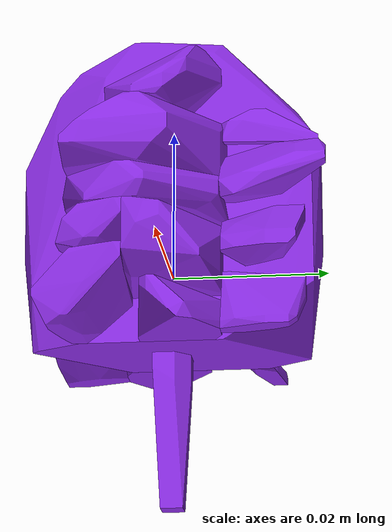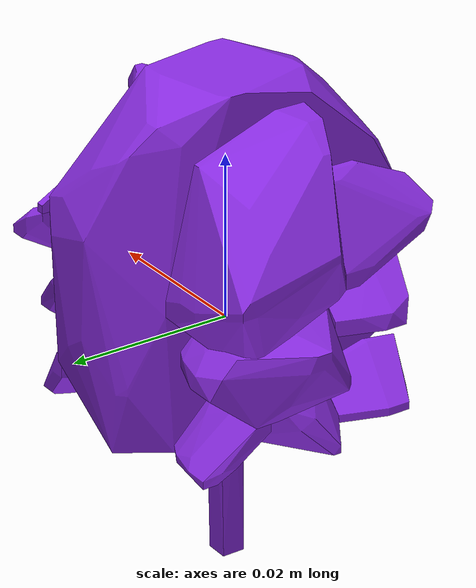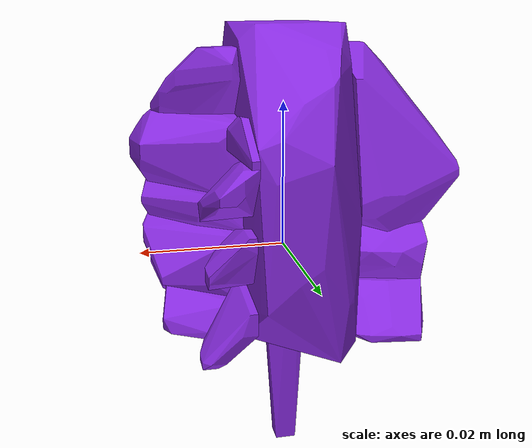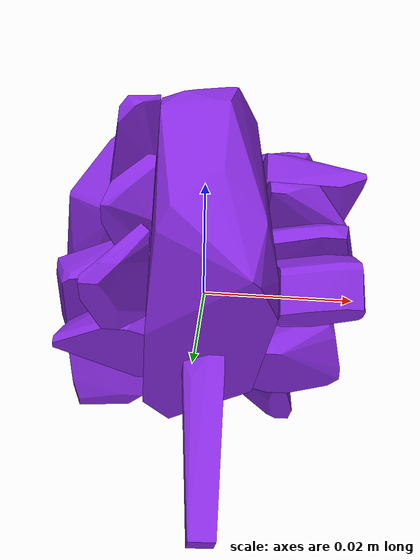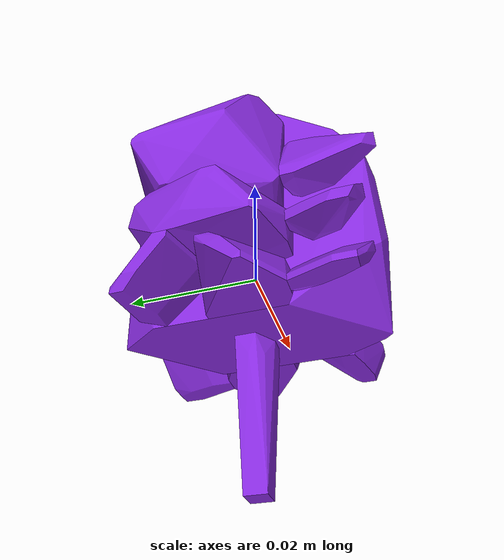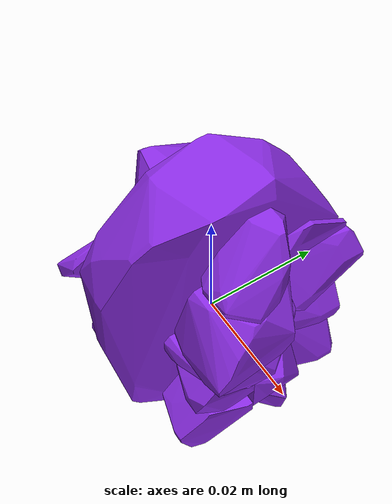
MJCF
<mujoco model="shapenetsem31">
  <asset>
    <mesh file="meshes/shapenetsem31/shapenetsem31_0.stl" name="shapenetsem31_0" scale="1 1 1"/>
    <mesh file="meshes/shapenetsem31/shapenetsem31_1.stl" name="shapenetsem31_1" scale="1 1 1"/>
    <mesh file="meshes/shapenetsem31/shapenetsem31_2.stl" name="shapenetsem31_2" scale="1 1 1"/>
    <mesh file="meshes/shapenetsem31/shapenetsem31_3.stl" name="shapenetsem31_3" scale="1 1 1"/>
    <mesh file="meshes/shapenetsem31/shapenetsem31_4.stl" name="shapenetsem31_4" scale="1 1 1"/>
    <mesh file="meshes/shapenetsem31/shapenetsem31_5.stl" name="shapenetsem31_5" scale="1 1 1"/>
    <mesh file="meshes/shapenetsem31/shapenetsem31_6.stl" name="shapenetsem31_6" scale="1 1 1"/>
    <mesh file="meshes/shapenetsem31/shapenetsem31_7.stl" name="shapenetsem31_7" scale="1 1 1"/>
    <mesh file="meshes/shapenetsem31/shapenetsem31_8.stl" name="shapenetsem31_8" scale="1 1 1"/>
    <mesh file="meshes/shapenetsem31/shapenetsem31_9.stl" name="shapenetsem31_9" scale="1 1 1"/>
    <mesh file="meshes/shapenetsem31/shapenetsem31_10.stl" name="shapenetsem31_10" scale="1 1 1"/>
    <mesh file="meshes/shapenetsem31/shapenetsem31_11.stl" name="shapenetsem31_11" scale="1 1 1"/>
    <mesh file="meshes/shapenetsem31/shapenetsem31_12.stl" name="shapenetsem31_12" scale="1 1 1"/>
    <mesh file="meshes/shapenetsem31/shapenetsem31_13.stl" name="shapenetsem31_13" scale="1 1 1"/>
    <mesh file="meshes/shapenetsem31/shapenetsem31_14.stl" name="shapenetsem31_14" scale="1 1 1"/>
    <mesh file="meshes/shapenetsem31/shapenetsem31_15.stl" name="shapenetsem31_15" scale="1 1 1"/>
    <mesh file="meshes/shapenetsem31/shapenetsem31_16.stl" name="shapenetsem31_16" scale="1 1 1"/>
    <mesh file="meshes/shapenetsem31/shapenetsem31_17.stl" name="shapenetsem31_17" scale="1 1 1"/>
    <mesh file="meshes/shapenetsem31/shapenetsem31_18.stl" name="shapenetsem31_18" scale="1 1 1"/>
    <mesh file="meshes/shapenetsem31/shapenetsem31_19.stl" name="shapenetsem31_19" scale="1 1 1"/>
    <texture file="../textures/texture31-0.png" type="2d" name="tex-sem31"/>
    <material name="sem31" reflectance="0.7" texrepeat="90 90" texture="tex-sem31" texuniform="true"/>
  </asset>
  <worldbody>
    <body>
      <body name="collision">
        <geom pos="0 0 0" mesh="shapenetsem31_0" type="mesh" solimp="0.998 0.998 0.001" solref="0.001 1" density="100" friction="0.95 0.3 0.1" rgba="0.54 0.17 0.89 1" group="1" condim="4"/>
        <geom pos="0 0 0" mesh="shapenetsem31_1" type="mesh" solimp="0.998 0.998 0.001" solref="0.001 1" density="100" friction="0.95 0.3 0.1" rgba="0.54 0.17 0.89 1" group="1" condim="4"/>
        <geom pos="0 0 0" mesh="shapenetsem31_2" type="mesh" solimp="0.998 0.998 0.001" solref="0.001 1" density="100" friction="0.95 0.3 0.1" rgba="0.54 0.17 0.89 1" group="1" condim="4"/>
        <geom pos="0 0 0" mesh="shapenetsem31_3" type="mesh" solimp="0.998 0.998 0.001" solref="0.001 1" density="100" friction="0.95 0.3 0.1" rgba="0.54 0.17 0.89 1" group="1" condim="4"/>
        <geom pos="0 0 0" mesh="shapenetsem31_4" type="mesh" solimp="0.998 0.998 0.001" solref="0.001 1" density="100" friction="0.95 0.3 0.1" rgba="0.54 0.17 0.89 1" group="1" condim="4"/>
        <geom pos="0 0 0" mesh="shapenetsem31_5" type="mesh" solimp="0.998 0.998 0.001" solref="0.001 1" density="100" friction="0.95 0.3 0.1" rgba="0.54 0.17 0.89 1" group="1" condim="4"/>
        <geom pos="0 0 0" mesh="shapenetsem31_6" type="mesh" solimp="0.998 0.998 0.001" solref="0.001 1" density="100" friction="0.95 0.3 0.1" rgba="0.54 0.17 0.89 1" group="1" condim="4"/>
        <geom pos="0 0 0" mesh="shapenetsem31_7" type="mesh" solimp="0.998 0.998 0.001" solref="0.001 1" density="100" friction="0.95 0.3 0.1" rgba="0.54 0.17 0.89 1" group="1" condim="4"/>
        <geom pos="0 0 0" mesh="shapenetsem31_8" type="mesh" solimp="0.998 0.998 0.001" solref="0.001 1" density="100" friction="0.95 0.3 0.1" rgba="0.54 0.17 0.89 1" group="1" condim="4"/>
        <geom pos="0 0 0" mesh="shapenetsem31_9" type="mesh" solimp="0.998 0.998 0.001" solref="0.001 1" density="100" friction="0.95 0.3 0.1" rgba="0.54 0.17 0.89 1" group="1" condim="4"/>
        <geom pos="0 0 0" mesh="shapenetsem31_10" type="mesh" solimp="0.998 0.998 0.001" solref="0.001 1" density="100" friction="0.95 0.3 0.1" rgba="0.54 0.17 0.89 1" group="1" condim="4"/>
        <geom pos="0 0 0" mesh="shapenetsem31_11" type="mesh" solimp="0.998 0.998 0.001" solref="0.001 1" density="100" friction="0.95 0.3 0.1" rgba="0.54 0.17 0.89 1" group="1" condim="4"/>
        <geom pos="0 0 0" mesh="shapenetsem31_12" type="mesh" solimp="0.998 0.998 0.001" solref="0.001 1" density="100" friction="0.95 0.3 0.1" rgba="0.54 0.17 0.89 1" group="1" condim="4"/>
        <geom pos="0 0 0" mesh="shapenetsem31_13" type="mesh" solimp="0.998 0.998 0.001" solref="0.001 1" density="100" friction="0.95 0.3 0.1" rgba="0.54 0.17 0.89 1" group="1" condim="4"/>
        <geom pos="0 0 0" mesh="shapenetsem31_14" type="mesh" solimp="0.998 0.998 0.001" solref="0.001 1" density="100" friction="0.95 0.3 0.1" rgba="0.54 0.17 0.89 1" group="1" condim="4"/>
        <geom pos="0 0 0" mesh="shapenetsem31_15" type="mesh" solimp="0.998 0.998 0.001" solref="0.001 1" density="100" friction="0.95 0.3 0.1" rgba="0.54 0.17 0.89 1" group="1" condim="4"/>
        <geom pos="0 0 0" mesh="shapenetsem31_16" type="mesh" solimp="0.998 0.998 0.001" solref="0.001 1" density="100" friction="0.95 0.3 0.1" rgba="0.54 0.17 0.89 1" group="1" condim="4"/>
        <geom pos="0 0 0" mesh="shapenetsem31_17" type="mesh" solimp="0.998 0.998 0.001" solref="0.001 1" density="100" friction="0.95 0.3 0.1" rgba="0.54 0.17 0.89 1" group="1" condim="4"/>
        <geom pos="0 0 0" mesh="shapenetsem31_18" type="mesh" solimp="0.998 0.998 0.001" solref="0.001 1" density="100" friction="0.95 0.3 0.1" rgba="0.54 0.17 0.89 1" group="1" condim="4"/>
        <geom pos="0 0 0" mesh="shapenetsem31_19" type="mesh" solimp="0.998 0.998 0.001" solref="0.001 1" density="100" friction="0.95 0.3 0.1" rgba="0.54 0.17 0.89 1" group="1" condim="4"/>
      </body>
      <body name="visual">
        <geom pos="0 0 0" mesh="shapenetsem31_0" type="mesh" rgba="0.58 0.4 0.04 1" conaffinity="0" contype="0" group="0" mass="0.0001"/>
        <geom pos="0 0 0" mesh="shapenetsem31_1" type="mesh" rgba="0.58 0.4 0.04 1" conaffinity="0" contype="0" group="0" mass="0.0001"/>
        <geom pos="0 0 0" mesh="shapenetsem31_2" type="mesh" rgba="0.58 0.4 0.04 1" conaffinity="0" contype="0" group="0" mass="0.0001"/>
        <geom pos="0 0 0" mesh="shapenetsem31_3" type="mesh" rgba="0.58 0.4 0.04 1" conaffinity="0" contype="0" group="0" mass="0.0001"/>
        <geom pos="0 0 0" mesh="shapenetsem31_4" type="mesh" rgba="0.58 0.4 0.04 1" conaffinity="0" contype="0" group="0" mass="0.0001"/>
        <geom pos="0 0 0" mesh="shapenetsem31_5" type="mesh" rgba="0.58 0.4 0.04 1" conaffinity="0" contype="0" group="0" mass="0.0001"/>
        <geom pos="0 0 0" mesh="shapenetsem31_6" type="mesh" rgba="0.58 0.4 0.04 1" conaffinity="0" contype="0" group="0" mass="0.0001"/>
        <geom pos="0 0 0" mesh="shapenetsem31_7" type="mesh" rgba="0.58 0.4 0.04 1" conaffinity="0" contype="0" group="0" mass="0.0001"/>
        <geom pos="0 0 0" mesh="shapenetsem31_8" type="mesh" rgba="0.58 0.4 0.04 1" conaffinity="0" contype="0" group="0" mass="0.0001"/>
        <geom pos="0 0 0" mesh="shapenetsem31_9" type="mesh" rgba="0.58 0.4 0.04 1" conaffinity="0" contype="0" group="0" mass="0.0001"/>
        <geom pos="0 0 0" mesh="shapenetsem31_10" type="mesh" rgba="0.58 0.4 0.04 1" conaffinity="0" contype="0" group="0" mass="0.0001"/>
        <geom pos="0 0 0" mesh="shapenetsem31_11" type="mesh" rgba="0.58 0.4 0.04 1" conaffinity="0" contype="0" group="0" mass="0.0001"/>
        <geom pos="0 0 0" mesh="shapenetsem31_12" type="mesh" rgba="0.58 0.4 0.04 1" conaffinity="0" contype="0" group="0" mass="0.0001"/>
        <geom pos="0 0 0" mesh="shapenetsem31_13" type="mesh" rgba="0.58 0.4 0.04 1" conaffinity="0" contype="0" group="0" mass="0.0001"/>
        <geom pos="0 0 0" mesh="shapenetsem31_14" type="mesh" rgba="0.58 0.4 0.04 1" conaffinity="0" contype="0" group="0" mass="0.0001"/>
        <geom pos="0 0 0" mesh="shapenetsem31_15" type="mesh" rgba="0.58 0.4 0.04 1" conaffinity="0" contype="0" group="0" mass="0.0001"/>
        <geom pos="0 0 0" mesh="shapenetsem31_16" type="mesh" rgba="0.58 0.4 0.04 1" conaffinity="0" contype="0" group="0" mass="0.0001"/>
        <geom pos="0 0 0" mesh="shapenetsem31_17" type="mesh" rgba="0.58 0.4 0.04 1" conaffinity="0" contype="0" group="0" mass="0.0001"/>
        <geom pos="0 0 0" mesh="shapenetsem31_18" type="mesh" rgba="0.58 0.4 0.04 1" conaffinity="0" contype="0" group="0" mass="0.0001"/>
        <geom pos="0 0 0" mesh="shapenetsem31_19" type="mesh" rgba="0.58 0.4 0.04 1" conaffinity="0" contype="0" group="0" mass="0.0001"/>
      </body>
      <site rgba="0 0 0 0" size="0.005" pos="0 0 -0.06" name="bottom_site"/>
      <site rgba="0 0 0 0" size="0.005" pos="0 0 0.04" name="top_site"/>
      <site rgba="0 0 0 0" size="0.005" pos="0.025 0.025 0" name="horizontal_radius_site"/>
    </body>
  </worldbody>
</mujoco>
